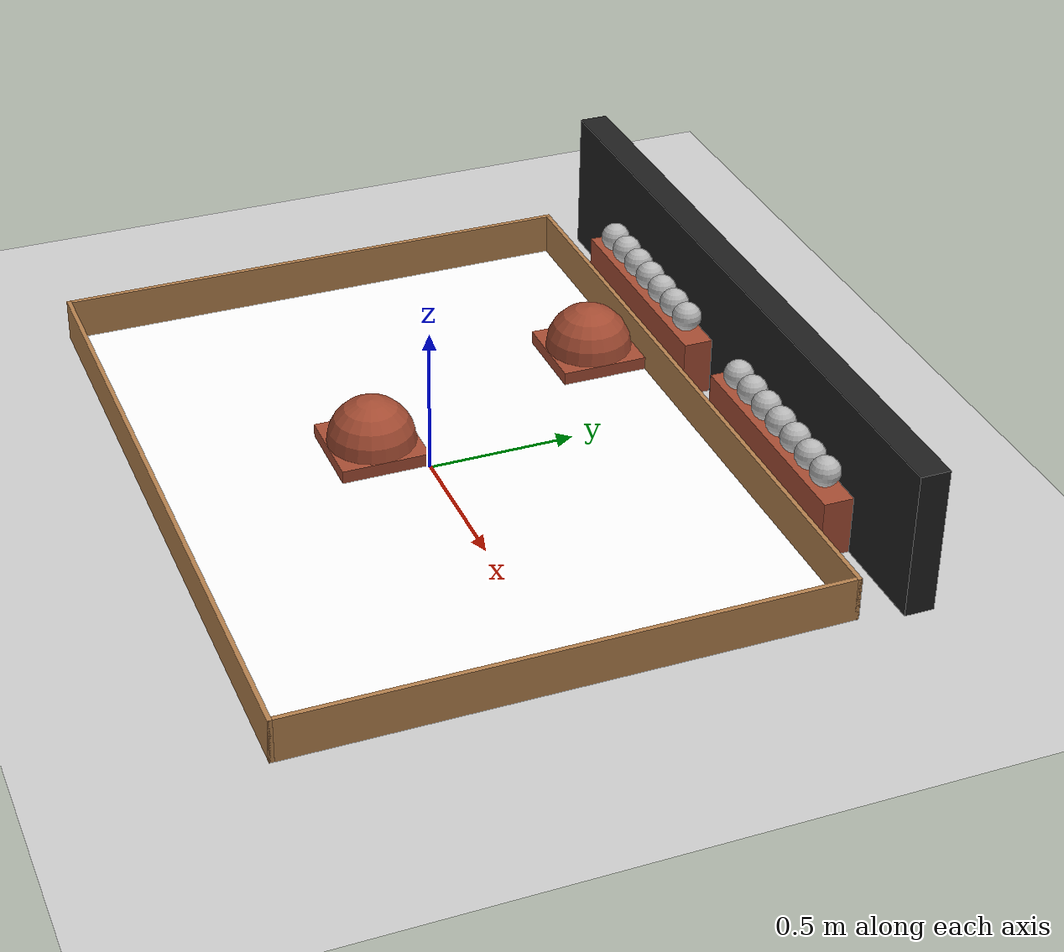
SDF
<?xml version="1.0"?>
<sdf version="1.5">
  <world name="default">
    <plugin name="ObjectManager" filename="libObject_Manager.so">
      <robotNamespace>ObjectManager</robotNamespace>
      <topicName>cmd_objmgr</topicName>
      <packageName>csrobot_ros</packageName>
      <preferencesFile>ObjectsPreferences.xml</preferencesFile>
      <inhibitMargin>0.05</inhibitMargin>
      <floorSizeX>2.40</floorSizeX>
      <floorSizeY>1.80</floorSizeY>
    </plugin>
    <gui fullscreen='0'>
      <camera name='user_default'>
        <pose frame=''>0.021617 -1.69486 2.50032 0 1.024 1.56218</pose>
        <view_controller>orbit</view_controller>
        <projection_type>perspective</projection_type>
      </camera>
    </gui>

    <include>
      <uri>model://ground_plane</uri>
    </include>

    <include>
      <uri>model://sun</uri>
    </include>

    <light name='user_directional_light_0' type='directional'>
      <pose frame=''>0.0 0.0 10.0 0 -0 0</pose>
      <diffuse>1 1 1 1</diffuse>
      <specular>0.1 0.1 0.1 1</specular>
      <direction>0.1 0.1 -0.9</direction>
      <attenuation>
        <range>100</range>
        <constant>0</constant>
        <linear>0</linear>
        <quadratic>0</quadratic>
      </attenuation>
      <cast_shadows>1</cast_shadows>
    </light>

    <model name='Obstacle0'>
      <pose frame=''>-0.45 0.75 0 0 0 0</pose>
      <link name='Obsacle'>
        <collision name='Collision0'>
          <pose frame=''>0 0 0.025 0 0 0</pose>
          <geometry>
            <box>
              <size>0.3 0.3 0.05</size>
            </box>
          </geometry>
        </collision>
        <collision name='Collision1'>
          <pose frame=''>0 0 0.05 0 0 0</pose>
          <geometry>
            <sphere>
              <radius>0.15</radius>
            </sphere>
          </geometry>
        </collision>
        <visual name='Visual0'>
          <pose frame=''>0 0 0.025 0 0 0</pose>
          <geometry>
            <box>
              <size>0.3 0.3 0.05</size>
            </box>
          </geometry>
          <material>
            <script>
              <uri>file://media/materials/scripts/gazebo.material</uri>
              <name>Gazebo/Bricks</name>
            </script>
            <ambient>1 1 1 1</ambient>
          </material>
        </visual>
        <visual name='Visual1'>
          <pose frame=''>0 0 0.05 0 0 0</pose>
          <geometry>
            <sphere>
              <radius>0.15</radius>
            </sphere>
          </geometry>
          <material>
            <script>
              <uri>file://media/materials/scripts/gazebo.material</uri>
              <name>Gazebo/Bricks</name>
            </script>
            <ambient>1 1 1 1</ambient>
          </material>
        </visual>
      </link>
      <static>1</static>
    </model>

    <model name='Obstacle1'>
      <pose frame=''>-0.15 -0.15 0 0 0 0</pose>
      <link name='Obsacle'>
        <collision name='Collision0'>
          <pose frame=''>0 0 0.025 0 0 0</pose>
          <geometry>
            <box>
              <size>0.3 0.3 0.05</size>
            </box>
          </geometry>
        </collision>
        <collision name='Collision1'>
          <pose frame=''>0 0 0.05 0 0 0</pose>
          <geometry>
            <sphere>
              <radius>0.15</radius>
            </sphere>
          </geometry>
        </collision>
        <visual name='Visual0'>
          <pose frame=''>0 0 0.025 0 0 0</pose>
          <geometry>
            <box>
              <size>0.3 0.3 0.05</size>
            </box>
          </geometry>
          <material>
            <script>
              <uri>file://media/materials/scripts/gazebo.material</uri>
              <name>Gazebo/Bricks</name>
            </script>
            <ambient>1 1 1 1</ambient>
          </material>
        </visual>
        <visual name='Visual1'>
          <pose frame=''>0 0 0.05 0 0 0</pose>
          <geometry>
            <sphere>
              <radius>0.15</radius>
            </sphere>
          </geometry>
          <material>
            <script>
              <uri>file://media/materials/scripts/gazebo.material</uri>
              <name>Gazebo/Bricks</name>
            </script>
            <ambient>1 1 1 1</ambient>
          </material>
        </visual>
      </link>
      <static>1</static>
    </model>

    <model name='BackBoard'>
      <pose frame=''>0.0 1.1 0 0 0 0</pose>
      <link name='LazyMonolith'>
        <visual name='Visual'>
          <pose frame=''>0 0 0.25 0 0 0</pose>
          <geometry>
            <box>
              <size>2.5 0.1 0.5</size>
            </box>
          </geometry>
          <material>
            <script>
              <uri>file://media/materials/scripts/gazebo.material</uri>
              <name>Gazebo/Black</name>
            </script>
            <ambient>1 1 1 1</ambient>
          </material>
        </visual>
      </link>
      <static>1</static>
    </model>

    <model name='ScoreBoard1'>
      <pose frame=''>0.5 1.0 0 0 0 0</pose>
      <link name='Base'>
        <visual name='Visual0'>
          <pose frame=''>0 0 0.1 0 0 0</pose>
          <geometry>
            <box>
              <size>0.8 0.1 0.2</size>
            </box>
          </geometry>
          <material>
            <script>
              <uri>file://media/materials/scripts/gazebo.material</uri>
              <name>Gazebo/Bricks</name>
            </script>
            <ambient>1 1 1 1</ambient>
          </material>
        </visual>
<!-- The Item Indicator 1-1 -->
        <visual name='LED11'>
          <pose>-0.3 0.0 0.25 0 0 0</pose>
          <geometry>
            <sphere>
              <radius>0.05</radius>
            </sphere>
          </geometry>
          <plugin name='led_controller' filename='libchange_led_color.so'>
            <topicName>led11_color</topicName>
            <color>0.2 0.2 0.2 0.5</color>
          </plugin>
        </visual>
<!-- The Item Indicator 1-2 -->
        <visual name='LED12'>
          <pose>-0.2 0.0 0.25 0 0 0</pose>
          <geometry>
            <sphere>
              <radius>0.05</radius>
            </sphere>
          </geometry>
          <plugin name='led_controller' filename='libchange_led_color.so'>
            <topicName>led12_color</topicName>
            <color>0.2 0.2 0.2 0.5</color>
          </plugin>
        </visual>
<!-- The Item Indicator 1-3 -->
        <visual name='LED13'>
          <pose>-0.1 0.0 0.25 0 0 0</pose>
          <geometry>
            <sphere>
              <radius>0.05</radius>
            </sphere>
          </geometry>
          <plugin name='led_controller' filename='libchange_led_color.so'>
            <topicName>led13_color</topicName>
            <color>0.2 0.2 0.2 0.5</color>
          </plugin>
        </visual>
<!-- The Item Indicator 1-4 -->
        <visual name='LED14'>
          <pose>-0.0 0.0 0.25 0 0 0</pose>
          <geometry>
            <sphere>
              <radius>0.05</radius>
            </sphere>
          </geometry>
          <plugin name='led_controller' filename='libchange_led_color.so'>
            <topicName>led14_color</topicName>
            <color>0.2 0.2 0.2 0.5</color>
          </plugin>
        </visual>
<!-- The Item Indicator 1-5 -->
        <visual name='LED15'>
          <pose>+0.1 0.0 0.25 0 0 0</pose>
          <geometry>
            <sphere>
              <radius>0.05</radius>
            </sphere>
          </geometry>
          <plugin name='led_controller' filename='libchange_led_color.so'>
            <topicName>led15_color</topicName>
            <color>0.2 0.2 0.2 0.5</color>
          </plugin>
        </visual>
<!-- The Item Indicator 1-6 -->
        <visual name='LED16'>
          <pose>+0.2 0.0 0.25 0 0 0</pose>
          <geometry>
            <sphere>
              <radius>0.05</radius>
            </sphere>
          </geometry>
          <plugin name='led_controller' filename='libchange_led_color.so'>
            <topicName>led16_color</topicName>
            <color>0.2 0.2 0.2 0.5</color>
          </plugin>
        </visual>
<!-- The Item Indicator 1-7 -->
        <visual name='LED17'>
          <pose>+0.3 0.0 0.25 0 0 0</pose>
          <geometry>
            <sphere>
              <radius>0.05</radius>
            </sphere>
          </geometry>
          <plugin name='led_controller' filename='libchange_led_color.so'>
            <topicName>led17_color</topicName>
            <color>0.2 0.2 0.2 0.5</color>
          </plugin>
        </visual>
      </link>
      <static>1</static>
    </model>

    <model name='ScoreBoard2'>
      <pose frame=''>-0.5 1.0 0 0 0 0</pose>
      <link name='Base'>
        <visual name='Visual0'>
          <pose frame=''>0 0 0.1 0 0 0</pose>
          <geometry>
            <box>
              <size>0.8 0.1 0.2</size>
            </box>
          </geometry>
          <material>
            <script>
              <uri>file://media/materials/scripts/gazebo.material</uri>
              <name>Gazebo/Bricks</name>
            </script>
            <ambient>1 1 1 1</ambient>
          </material>
        </visual>
<!-- The Item Indicator 2-1 -->
        <visual name='LED21'>
          <pose>+0.3 0.0 0.25 0 0 0</pose>
          <geometry>
            <sphere>
              <radius>0.05</radius>
            </sphere>
          </geometry>
          <plugin name='led_controller' filename='libchange_led_color.so'>
            <topicName>led21_color</topicName>
            <color>0.2 0.2 0.2 0.5</color>
          </plugin>
        </visual>
<!-- The Item Indicator 2-2 -->
        <visual name='LED22'>
          <pose>+0.2 0.0 0.25 0 0 0</pose>
          <geometry>
            <sphere>
              <radius>0.05</radius>
            </sphere>
          </geometry>
          <plugin name='led_controller' filename='libchange_led_color.so'>
            <topicName>led22_color</topicName>
            <color>0.2 0.2 0.2 0.5</color>
          </plugin>
        </visual>
<!-- The Item Indicator 2-3 -->
        <visual name='LED23'>
          <pose>+0.1 0.0 0.25 0 0 0</pose>
          <geometry>
            <sphere>
              <radius>0.05</radius>
            </sphere>
          </geometry>
          <plugin name='led_controller' filename='libchange_led_color.so'>
            <topicName>led23_color</topicName>
            <color>0.2 0.2 0.2 0.5</color>
          </plugin>
        </visual>
<!-- The Item Indicator 2-4 -->
        <visual name='LED24'>
          <pose>-0.0 0.0 0.25 0 0 0</pose>
          <geometry>
            <sphere>
              <radius>0.05</radius>
            </sphere>
          </geometry>
          <plugin name='led_controller' filename='libchange_led_color.so'>
            <topicName>led24_color</topicName>
            <color>0.2 0.2 0.2 0.5</color>
          </plugin>
        </visual>
<!-- The Item Indicator 2-5 -->
        <visual name='LED25'>
          <pose>-0.1 0.0 0.25 0 0 0</pose>
          <geometry>
            <sphere>
              <radius>0.05</radius>
            </sphere>
          </geometry>
          <plugin name='led_controller' filename='libchange_led_color.so'>
            <topicName>led25_color</topicName>
            <color>0.2 0.2 0.2 0.5</color>
          </plugin>
        </visual>
<!-- The Item Indicator 2-6 -->
        <visual name='LED26'>
          <pose>-0.2 0.0 0.25 0 0 0</pose>
          <geometry>
            <sphere>
              <radius>0.05</radius>
            </sphere>
          </geometry>
          <plugin name='led_controller' filename='libchange_led_color.so'>
            <topicName>led26_color</topicName>
            <color>0.2 0.2 0.2 0.5</color>
          </plugin>
        </visual>
<!-- The Item Indicator 2-7 -->
        <visual name='LED27'>
          <pose>-0.3 0.0 0.25 0 0 0</pose>
          <geometry>
            <sphere>
              <radius>0.05</radius>
            </sphere>
          </geometry>
          <plugin name='led_controller' filename='libchange_led_color.so'>
            <topicName>led27_color</topicName>
            <color>0.2 0.2 0.2 0.5</color>
          </plugin>
        </visual>
      </link>
      <static>1</static>
    </model>

    <model name='TheWall'>
      <pose frame=''>0 0 0 0 0 0</pose>
      <link name='Wall'>
        <collision name='Wall_0_Collision'>
          <pose frame=''>0 0.9075 0.075 0 0 0</pose>
          <geometry>
            <box>
              <size>2.43 0.015 0.15</size>
            </box>
          </geometry>
        </collision>
        <visual name='Wall_0_Visual'>
          <pose frame=''>0 0.9075 0.075 0 0 0</pose>
          <geometry>
            <box>
              <size>2.43 0.015 0.15</size>
            </box>
          </geometry>
          <material>
            <script>
              <uri>file://media/materials/scripts/gazebo.material</uri>
              <name>Gazebo/Wood</name>
            </script>
            <ambient>1 1 1 1</ambient>
          </material>
        </visual>

        <collision name='Wall_1_Collision'>
          <pose frame=''>0 -0.9075 0.075 0 0 0</pose>
          <geometry>
            <box>
              <size>2.43 0.015 0.15</size>
            </box>
          </geometry>
        </collision>
        <visual name='Wall_1_Visual'>
          <pose frame=''>0 -0.9075 0.075 0 0 0</pose>
          <geometry>
            <box>
              <size>2.43 0.015 0.15</size>
            </box>
          </geometry>
          <material>
            <script>
              <uri>file://media/materials/scripts/gazebo.material</uri>
              <name>Gazebo/Wood</name>
            </script>
            <ambient>1 1 1 1</ambient>
          </material>
        </visual>

        <collision name='Wall_2_Collision'>
          <pose frame=''>1.2075 0.0 0.075 0 0 0</pose>
          <geometry>
            <box>
              <size>0.015 1.830 0.15</size>
            </box>
          </geometry>
        </collision>
        <visual name='Wall_2_Visual'>
          <pose frame=''>1.2075 0.0 0.075 0 0 0</pose>
          <geometry>
            <box>
              <size>0.015 1.830 0.15</size>
            </box>
          </geometry>
          <material>
            <script>
              <uri>file://media/materials/scripts/gazebo.material</uri>
              <name>Gazebo/Wood</name>
            </script>
            <ambient>1 1 1 1</ambient>
          </material>
        </visual>

        <collision name='Wall_3_Collision'>
          <pose frame=''>-1.2075 0.0 0.075 0 0 0</pose>
            <geometry>
            <box>
              <size>0.015 1.830 0.15</size>
            </box>
          </geometry>
        </collision>
        <visual name='Wall_3_Visual'>
          <pose frame=''>-1.2075 0.0 0.075 0 0 0</pose>
          <geometry>
            <box>
              <size>0.015 1.830 0.15</size>
            </box>
          </geometry>
          <material>
            <script>
              <uri>file://media/materials/scripts/gazebo.material</uri>
              <name>Gazebo/Wood</name>
            </script>
            <ambient>1 1 1 1</ambient>
          </material>
        </visual>
      </link>

      <link name='TheFloor'>
        <pose frame=''>0 0 0 0 0 0</pose>
        <collision name='Collision'>
          <geometry>
            <box>
              <size>2.400 1.800 0.01</size>
            </box>
          </geometry>
        </collision>
        <visual name='Visual'>
          <geometry>
            <box>
              <size>2.400 1.800 0.01</size>
            </box>
          </geometry>
          <material>
            <script>
              <uri>file://media/materials/scripts/csrobot_ros.material</uri>
              <name>Gazebo/cospace-map1</name>
            </script>
            <ambient>1 1 1 1</ambient>
          </material>
        </visual>
      </link>

      <static>1</static>
    </model>
  </world>
</sdf>
